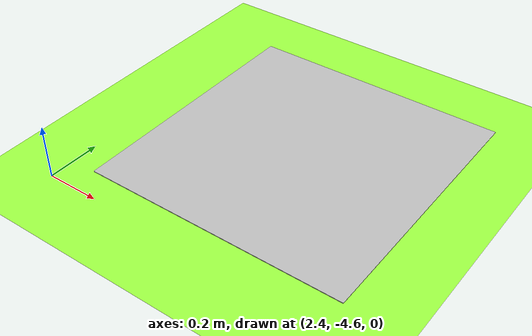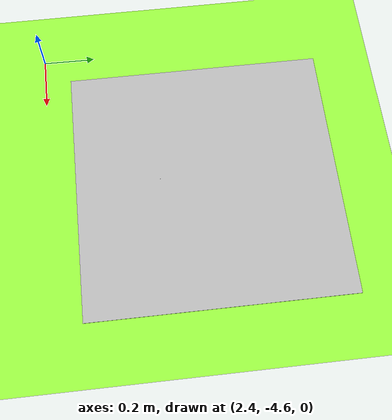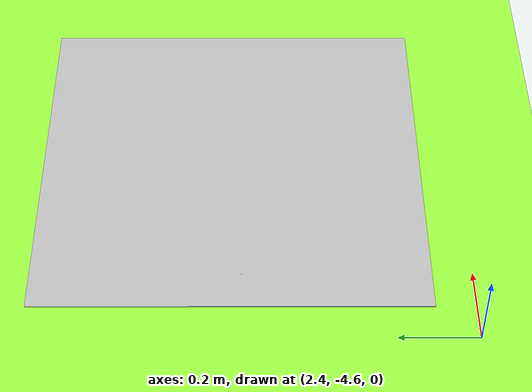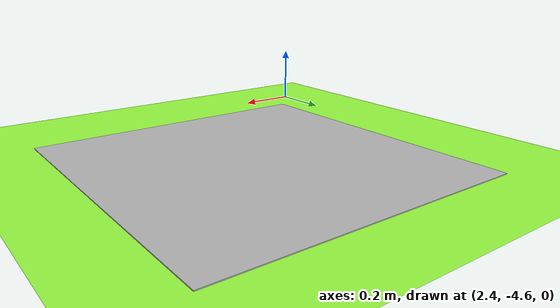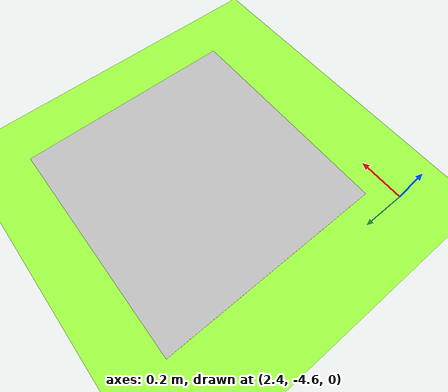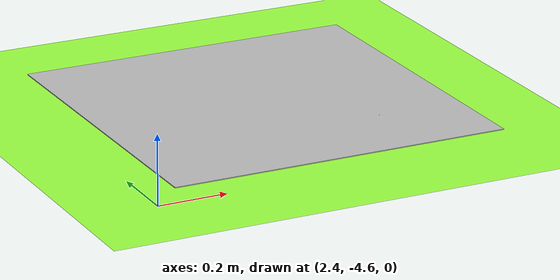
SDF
<?xml version="1.0" encoding="UTF-8"?>
<sdf version="1.9">
  <world name="lawn_with_base">

    <include>
      <uri>model://land_base</uri>
      <pose>3 6 0 0 0 0</pose>
      <name>land_base_3</name>
    </include>

    <physics type="ode">
      <max_step_size>0.004</max_step_size>
      <real_time_factor>1.0</real_time_factor>
      <real_time_update_rate>250</real_time_update_rate>
    </physics>
    <plugin name="gz::sim::systems::Physics" filename="gz-sim-physics-system"/>
    <plugin name="gz::sim::systems::UserCommands" filename="gz-sim-user-commands-system"/>
    <plugin name="gz::sim::systems::SceneBroadcaster" filename="gz-sim-scene-broadcaster-system"/>
    <plugin name="gz::sim::systems::Contact" filename="gz-sim-contact-system"/>
    <plugin name="gz::sim::systems::Imu" filename="gz-sim-imu-system"/>
    <plugin name="gz::sim::systems::AirPressure" filename="gz-sim-air-pressure-system"/>
    <plugin name="gz::sim::systems::ApplyLinkWrench" filename="gz-sim-apply-link-wrench-system"/>
    <plugin name="gz::sim::systems::NavSat" filename="gz-sim-navsat-system"/>
    <plugin name="gz::sim::systems::Sensors" filename="gz-sim-sensors-system">
      <render_engine>ogre2</render_engine>
    </plugin>

    <gui fullscreen="false">
      <!-- 3D scene -->
      <plugin filename="MinimalScene" name="3D View">
        <gz-gui>
          <title>3D View</title>
          <property type="bool" key="showTitleBar">false</property>
          <property type="string" key="state">docked</property>
        </gz-gui>
        <engine>ogre2</engine>
        <scene>scene</scene>
        <ambient_light>0.4 0.4 0.4</ambient_light>
        <background_color>0.8 0.8 0.8</background_color>
        <camera_pose>-6 0 6 0 0.5 0</camera_pose>
        <camera_clip>
          <near>0.25</near>
          <far>25000</far>
        </camera_clip>
      </plugin>
      <!-- Plugins that add functionality to the scene -->
      <plugin filename="EntityContextMenuPlugin" name="Entity context menu">
        <gz-gui>
          <property key="state" type="string">floating</property>
          <property key="width" type="double">5</property>
          <property key="height" type="double">5</property>
          <property key="showTitleBar" type="bool">false</property>
        </gz-gui>
      </plugin>
      <plugin filename="GzSceneManager" name="Scene Manager">
        <gz-gui>
          <property key="resizable" type="bool">false</property>
          <property key="width" type="double">5</property>
          <property key="height" type="double">5</property>
          <property key="state" type="string">floating</property>
          <property key="showTitleBar" type="bool">false</property>
        </gz-gui>
      </plugin>
      <plugin filename="InteractiveViewControl" name="Interactive view control">
        <gz-gui>
          <property key="resizable" type="bool">false</property>
          <property key="width" type="double">5</property>
          <property key="height" type="double">5</property>
          <property key="state" type="string">floating</property>
          <property key="showTitleBar" type="bool">false</property>
        </gz-gui>
      </plugin>
      <plugin filename="CameraTracking" name="Camera Tracking">
        <gz-gui>
          <property key="resizable" type="bool">false</property>
          <property key="width" type="double">5</property>
          <property key="height" type="double">5</property>
          <property key="state" type="string">floating</property>
          <property key="showTitleBar" type="bool">false</property>
        </gz-gui>
      </plugin>
      <plugin filename="MarkerManager" name="Marker manager">
        <gz-gui>
          <property key="resizable" type="bool">false</property>
          <property key="width" type="double">5</property>
          <property key="height" type="double">5</property>
          <property key="state" type="string">floating</property>
          <property key="showTitleBar" type="bool">false</property>
        </gz-gui>
      </plugin>
      <plugin filename="SelectEntities" name="Select Entities">
        <gz-gui>
          <anchors target="Select entities">
            <line own="right" target="right"/>
            <line own="top" target="top"/>
          </anchors>
          <property key="resizable" type="bool">false</property>
          <property key="width" type="double">5</property>
          <property key="height" type="double">5</property>
          <property key="state" type="string">floating</property>
          <property key="showTitleBar" type="bool">false</property>
        </gz-gui>
      </plugin>
      <plugin filename="VisualizationCapabilities" name="Visualization Capabilities">
        <gz-gui>
          <property key="resizable" type="bool">false</property>
          <property key="width" type="double">5</property>
          <property key="height" type="double">5</property>
          <property key="state" type="string">floating</property>
          <property key="showTitleBar" type="bool">false</property>
        </gz-gui>
      </plugin>
      <plugin filename="Spawn" name="Spawn Entities">
        <gz-gui>
          <anchors target="Select entities">
            <line own="right" target="right"/>
            <line own="top" target="top"/>
          </anchors>
          <property key="resizable" type="bool">false</property>
          <property key="width" type="double">5</property>
          <property key="height" type="double">5</property>
          <property key="state" type="string">floating</property>
          <property key="showTitleBar" type="bool">false</property>
        </gz-gui>
      </plugin>
      <plugin name="World control" filename="WorldControl">
        <gz-gui>
          <title>World control</title>
          <property type="bool" key="showTitleBar">0</property>
          <property type="bool" key="resizable">0</property>
          <property type="double" key="height">72</property>
          <property type="double" key="width">121</property>
          <property type="double" key="z">1</property>
          <property type="string" key="state">floating</property>
          <anchors target="3D View">
            <line own="left" target="left"/>
            <line own="bottom" target="bottom"/>
          </anchors>
        </gz-gui>
        <play_pause>1</play_pause>
        <step>1</step>
        <start_paused>1</start_paused>
      </plugin>
      <plugin name="World stats" filename="WorldStats">
        <gz-gui>
          <title>World stats</title>
          <property type="bool" key="showTitleBar">0</property>
          <property type="bool" key="resizable">0</property>
          <property type="double" key="height">110</property>
          <property type="double" key="width">290</property>
          <property type="double" key="z">1</property>
          <property type="string" key="state">floating</property>
          <anchors target="3D View">
            <line own="right" target="right"/>
            <line own="bottom" target="bottom"/>
          </anchors>
        </gz-gui>
        <sim_time>1</sim_time>
        <real_time>1</real_time>
        <real_time_factor>1</real_time_factor>
        <iterations>1</iterations>
      </plugin>
      <plugin name="Entity tree" filename="EntityTree"/>
    </gui>
    <gravity>0 0 -9.8</gravity>
    <magnetic_field>6e-06 2.3e-05 -4.2e-05</magnetic_field>
    <atmosphere type="adiabatic"/>
    <scene>
      <sky>
        <clouds>
          <speed>12</speed>
        </clouds>
      </sky>
      <grid>true</grid>
      <ambient>0.5 0.5 0.5 0.3</ambient>
      <background>0.3 0.3 0.3 0.3</background>
      <shadows>true</shadows>
    </scene>
    <model name="ground_plane">
      <static>true</static>
      <link name="link">
        <collision name="collision">
          <geometry>
            <plane>
              <normal>0 0 1</normal>
              <size>1 1</size>
            </plane>
          </geometry>
          <surface>
            <friction>
              <ode>
                <mu>0.6</mu>
                <mu2>0.6</mu2>
              </ode>
            </friction>
            <bounce/>
            <contact>
              <collide_bitmask>65535</collide_bitmask>
              <ode>
                <min_depth>0.005</min_depth>
                <kp>1e8</kp>
              </ode>
            </contact>
          </surface>
        </collision>
        <visual name="visual">
          <cast_shadows>false</cast_shadows>
          <geometry>
            <plane>
              <normal>0 0 1</normal>
              <size>400 400</size>
            </plane>
          </geometry>
          <material>
            <diffuse>0.6 1.0 0.25 0.5</diffuse>
            <specular>0 0 0 0</specular>
            <emissive>0 0 0 0</emissive>
          </material>
        </visual>
        <pose>0 0 0 0 -0 0</pose>
        <inertial>
          <pose>0 0 0 0 -0 0</pose>
          <mass>1</mass>
          <inertia>
            <ixx>1</ixx>
            <ixy>0</ixy>
            <ixz>0</ixz>
            <iyy>1</iyy>
            <iyz>0</iyz>
            <izz>1</izz>
          </inertia>
        </inertial>
        <enable_wind>false</enable_wind>
      </link>
      <pose>0 0 0 0 -0 0</pose>
      <self_collide>false</self_collide>
    </model>
    <light name="sunUTC" type="directional">
      <pose>0 0 500 0 -0 0</pose>
      <cast_shadows>true</cast_shadows>
      <intensity>1</intensity>
      <direction>0.001 0.625 -0.78</direction>
      <diffuse>0.904 0.904 0.904 1</diffuse>
      <specular>0.271 0.271 0.271 1</specular>
      <attenuation>
        <range>2000</range>
        <linear>0</linear>
        <constant>1</constant>
        <quadratic>0</quadratic>
      </attenuation>
      <spot>
        <inner_angle>0</inner_angle>
        <outer_angle>0</outer_angle>
        <falloff>0</falloff>
      </spot>
    </light>
    <light type="directional" name="sun_2">
      <cast_shadows>true</cast_shadows>
      <pose>200 200 200 0 0 0</pose>
      <diffuse>0.5 0.5 0.5 0.3</diffuse>
      <specular>0.2 0.2 0.2 0.3</specular>
      <attenuation>
        <range>2000</range>
        <constant>1</constant>
        <linear>0</linear>
        <quadratic>0</quadratic>
      </attenuation>
      <direction>0.01 0.01 -0.9</direction>
    </light>
    <spherical_coordinates>
      <surface_model>EARTH_WGS84</surface_model>
      <world_frame_orientation>ENU</world_frame_orientation>
      <latitude_deg>47.397971057728974</latitude_deg>
      <longitude_deg> 8.546163739800146</longitude_deg>
      <elevation>0</elevation>
    </spherical_coordinates>
  </world>
</sdf>

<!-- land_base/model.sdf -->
<sdf version='1.9'>
  <model name='land_base'>
    <link name='link_E'>
      <inertial>
        <mass>1</mass>
        <inertia>
          <ixx>0.1</ixx>
          <ixy>0.0</ixy>
          <ixz>0.0</ixz>
          <iyy>0.1</iyy>
          <iyz>0.0</iyz>
          <izz>0.1</izz>
        </inertia>
      </inertial>
      <pose>0 0 0 0 0 0</pose>
      <visual name='visual'>
        <pose>0 -10 0 0 0 0</pose> # 0 -10 0 0 0 0
        <geometry>
          <mesh>
            <uri>model://land_base/meshes/land_base_1.obj</uri>
            <scale>1 1 1</scale>
          </mesh>
        </geometry>
        <transparency>0</transparency>
        <cast_shadows>true</cast_shadows>
      </visual>
      <collision name='collision'>
        <laser_retro>0</laser_retro>
        <max_contacts>100</max_contacts>
        <pose>0 -10 0 0 0 0</pose> # 0 -10 0 0 0 0
        <geometry>
          <mesh>
            <uri>model://land_base/meshes/land_base_1.obj</uri>
            <scale>1 1 1</scale>
          </mesh>
        </geometry>
        <surface>
          <friction>
            <ode>
              <mu>100</mu>
              <mu2>100</mu2>
              <fdir1>0 0 0</fdir1>
              <slip1>0</slip1>
              <slip2>0</slip2>
            </ode>
            <torsional>
              <coefficient>1</coefficient>
              <patch_radius>1</patch_radius>
              <surface_radius>1</surface_radius>
              <use_patch_radius>true</use_patch_radius>
              <ode>
                <slip>0</slip>
              </ode>
            </torsional>
          </friction>
          <bounce>
            <restitution_coefficient>1</restitution_coefficient>
            <threshold>1e+06</threshold>
          </bounce>
          <contact>
            <collide_without_contact>false</collide_without_contact>
            <collide_without_contact_bitmask>1</collide_without_contact_bitmask>
            <collide_bitmask>1</collide_bitmask>
            <ode>
              <soft_cfm>0</soft_cfm>
              <soft_erp>0.2</soft_erp>
              <kp>1e+13</kp>
              <kd>1</kd>
              <max_vel>0.01</max_vel>
              <min_depth>0</min_depth>
            </ode>
            <bullet>
              <split_impulse>true</split_impulse>
              <split_impulse_penetration_threshold>-0.01</split_impulse_penetration_threshold>
              <soft_cfm>0</soft_cfm>
              <soft_erp>0.2</soft_erp>
              <kp>1e+13</kp>
              <kd>1</kd>
            </bullet>
          </contact>
        </surface>
      </collision>
    </link>
    <static>true</static>
    <allow_auto_disable>true</allow_auto_disable>
  </model>
</sdf>
